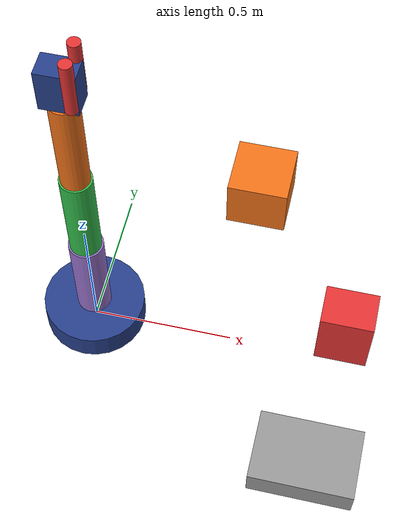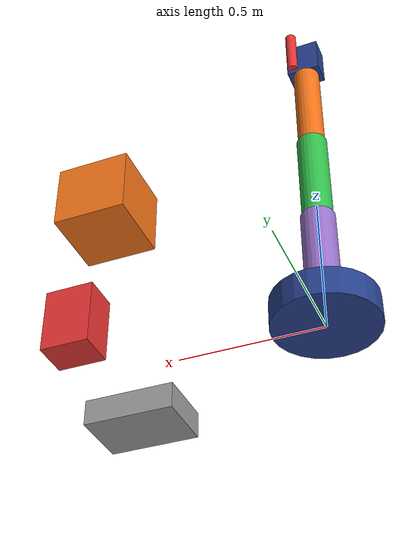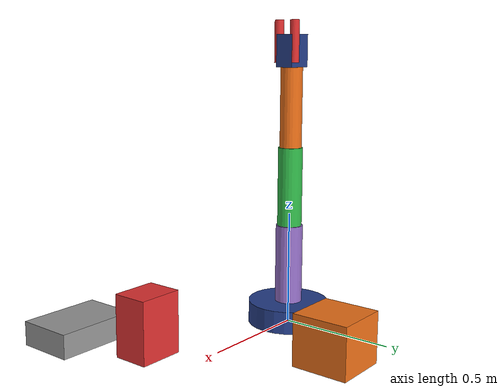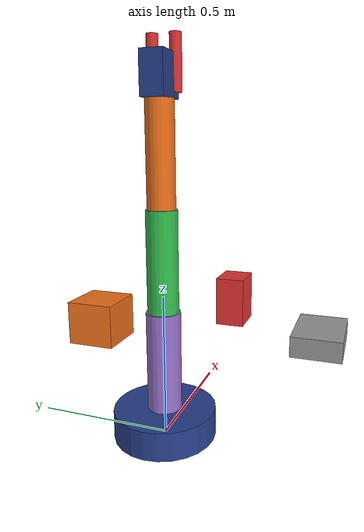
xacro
<?xml version="1.0"?>
<robot xmlns:xacro="http://www.ros.org/wiki/xacro" name="tentacle_blade_robot">
  <xacro:property name="base_radius" value="0.18"/>
  <xacro:property name="base_height" value="0.10"/>
  <xacro:property name="seg_len" value="0.35"/>
  <xacro:property name="seg_rad" value="0.06"/>
  <xacro:property name="finger_len" value="0.18"/>
  <xacro:property name="finger_rad" value="0.02"/>

  <material name="dark_blue"><color rgba="0.15 0.25 0.55 1.0"/></material>
  <material name="soft_purple"><color rgba="0.60 0.45 0.80 1.0"/></material>
  <material name="gray"><color rgba="0.6 0.6 0.6 1.0"/></material>
  <material name="orange"><color rgba="0.95 0.45 0.1 1.0"/></material>
  <material name="red"><color rgba="0.9 0.2 0.2 1.0"/></material>
  <material name="green"><color rgba="0.2 0.75 0.3 1.0"/></material>

  <link name="world"/>

  <joint name="world_to_base" type="fixed">
    <parent link="world"/>
    <child link="base_link"/>
    <origin xyz="0 0 0.05" rpy="0 0 0"/>
  </joint>

  <link name="base_link">
    <visual><geometry><cylinder radius="${base_radius}" length="${base_height}"/></geometry><material name="dark_blue"/></visual>
  </link>

  <joint name="base_yaw" type="revolute">
    <parent link="base_link"/>
    <child link="segment1_link"/>
    <origin xyz="0 0 ${base_height/2.0}" rpy="0 0 0"/>
    <axis xyz="0 0 1"/>
    <limit lower="-1.57" upper="1.57" effort="10" velocity="1.0"/>
  </joint>

  <link name="segment1_link">
    <visual><origin xyz="0 0 ${seg_len/2.0}" rpy="0 0 0"/><geometry><cylinder radius="${seg_rad}" length="${seg_len}"/></geometry><material name="soft_purple"/></visual>
  </link>

  <joint name="bend_1" type="revolute">
    <parent link="segment1_link"/>
    <child link="segment2_link"/>
    <origin xyz="0 0 ${seg_len}" rpy="0 0 0"/>
    <axis xyz="0 1 0"/>
    <limit lower="-1.2" upper="1.2" effort="10" velocity="1.0"/>
  </joint>

  <link name="segment2_link">
    <visual><origin xyz="0 0 ${seg_len/2.0}" rpy="0 0 0"/><geometry><cylinder radius="${seg_rad*0.9}" length="${seg_len}"/></geometry><material name="green"/></visual>
  </link>

  <joint name="bend_2" type="revolute">
    <parent link="segment2_link"/>
    <child link="segment3_link"/>
    <origin xyz="0 0 ${seg_len}" rpy="0 0 0"/>
    <axis xyz="0 1 0"/>
    <limit lower="-1.2" upper="1.2" effort="10" velocity="1.0"/>
  </joint>

  <link name="segment3_link">
    <visual><origin xyz="0 0 ${seg_len/2.0}" rpy="0 0 0"/><geometry><cylinder radius="${seg_rad*0.8}" length="${seg_len}"/></geometry><material name="orange"/></visual>
  </link>

  <joint name="wrist_pitch" type="revolute">
    <parent link="segment3_link"/>
    <child link="gripper_link"/>
    <origin xyz="0 0 ${seg_len}" rpy="0 0 0"/>
    <axis xyz="0 1 0"/>
    <limit lower="-1.2" upper="1.2" effort="10" velocity="1.0"/>
  </joint>

  <link name="gripper_link">
    <visual><origin xyz="0 0 0.07" rpy="0 0 0"/><geometry><box size="0.12 0.08 0.14"/></geometry><material name="dark_blue"/></visual>
  </link>

  <joint name="left_finger_joint" type="fixed">
    <parent link="gripper_link"/>
    <child link="left_finger"/>
    <origin xyz="0.04 0.04 0.02" rpy="0 0 0"/>
  </joint>

  <link name="left_finger">
    <visual><origin xyz="0 0 ${finger_len/2.0}" rpy="0 0 0"/><geometry><cylinder radius="${finger_rad}" length="${finger_len}"/></geometry><material name="red"/></visual>
  </link>

  <joint name="right_finger_joint" type="fixed">
    <parent link="gripper_link"/>
    <child link="right_finger"/>
    <origin xyz="0.04 -0.04 0.02" rpy="0 0 0"/>
  </joint>

  <link name="right_finger">
    <visual><origin xyz="0 0 ${finger_len/2.0}" rpy="0 0 0"/><geometry><cylinder radius="${finger_rad}" length="${finger_len}"/></geometry><material name="red"/></visual>
  </link>

  <link name="tray_link">
    <visual><origin xyz="0 0 0.05" rpy="0 0 0"/><geometry><box size="0.35 0.24 0.10"/></geometry><material name="gray"/></visual>
  </link>
  <joint name="tray_joint" type="fixed">
    <parent link="world"/>
    <child link="tray_link"/>
    <origin xyz="0.85 -0.45 0.05" rpy="0 0 0"/>
  </joint>

  <link name="fixture_link">
    <visual><origin xyz="0 0 0.12" rpy="0 0 0"/><geometry><box size="0.18 0.14 0.24"/></geometry><material name="red"/></visual>
  </link>
  <joint name="fixture_joint" type="fixed">
    <parent link="world"/>
    <child link="fixture_link"/>
    <origin xyz="0.90 0.00 0.12" rpy="0 0 0"/>
  </joint>

  <link name="recovery_box_link">
    <visual><origin xyz="0 0 0.10" rpy="0 0 0"/><geometry><box size="0.22 0.22 0.20"/></geometry><material name="orange"/></visual>
  </link>
  <joint name="recovery_joint" type="fixed">
    <parent link="world"/>
    <child link="recovery_box_link"/>
    <origin xyz="0.50 0.55 0.10" rpy="0 0 0"/>
  </joint>
</robot>
